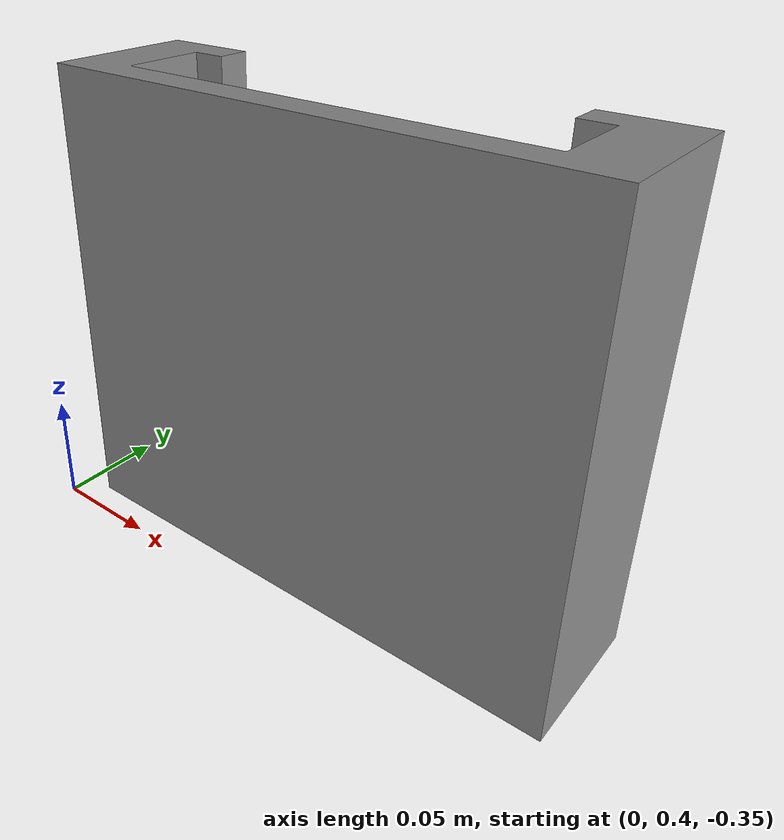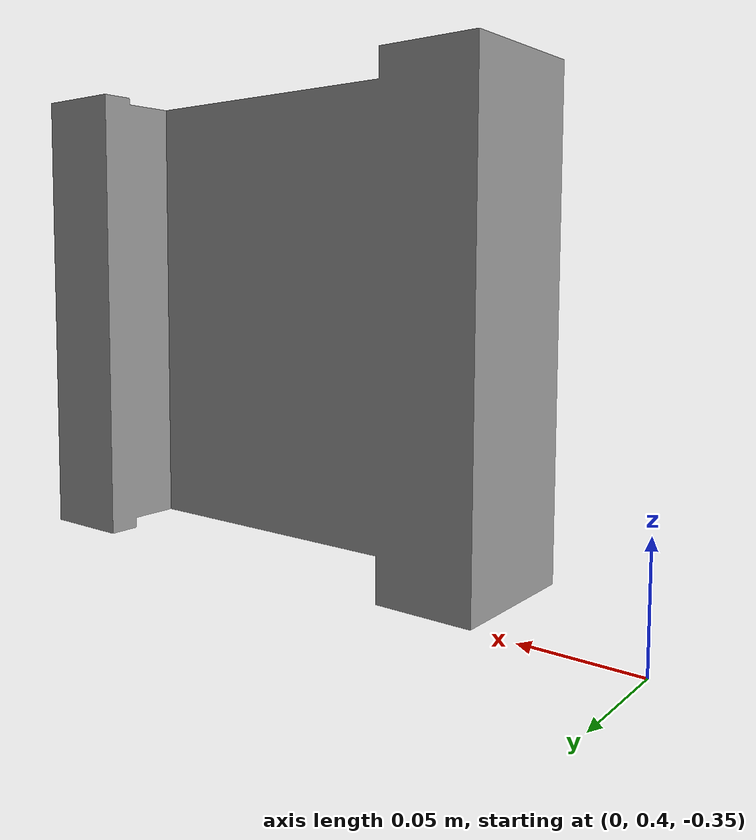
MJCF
<mujoco model="original-97">
  <default>
    <default class="visual">
      <geom group="2" type="mesh" contype="0" conaffinity="0"/>
    </default>
    <default class="collision">
      <geom group="3" type="mesh"/>
    </default>
  </default>
  <asset>
    <material name="material_0_0" specular="0.06666666666666667" shininess="0.03" rgba="0.5294117647058824 0.5294117647058824 0.5294117647058824 1"/>
    <mesh file="original-97.obj"/>
  </asset>
  <worldbody>
    <body name="original-97">
      <geom material="material_0_0" mesh="original-97" class="visual"/>
      <geom mesh="original-97" class="collision"/>
    </body>
  </worldbody>
</mujoco>
